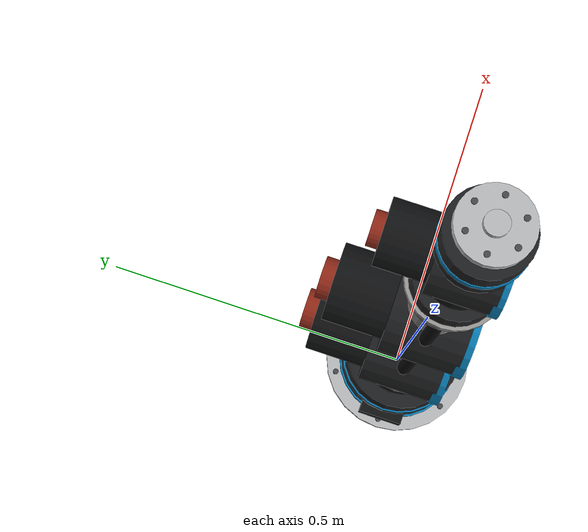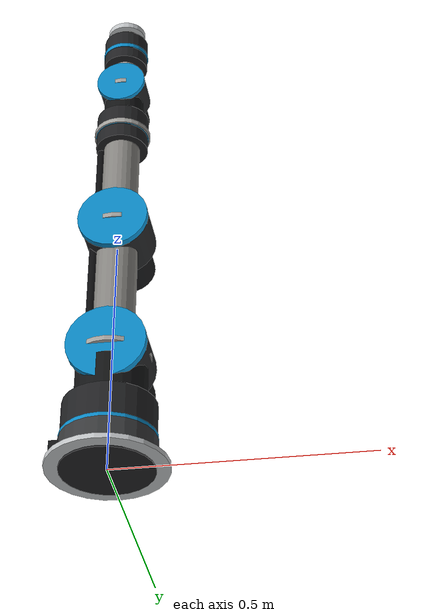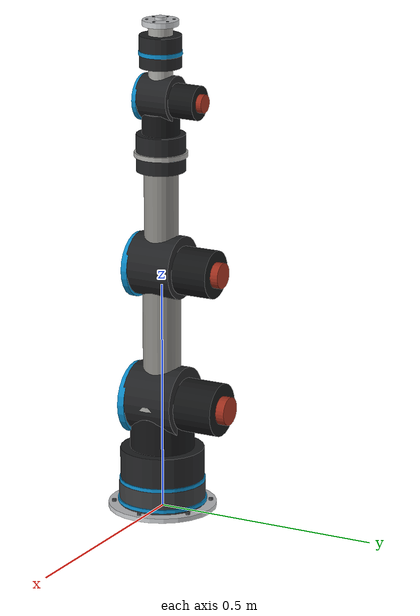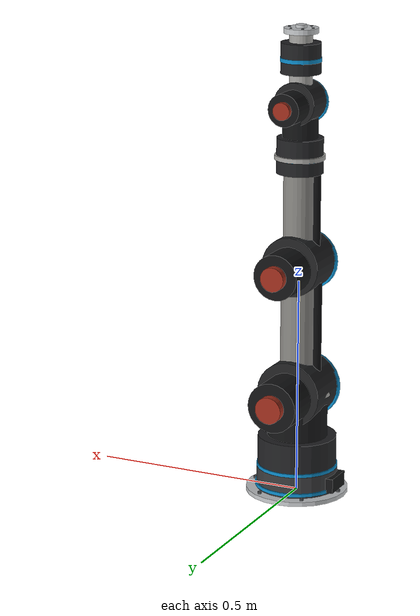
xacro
<?xml version="1.0"?>
<robot name="robot_arm" xmlns:xacro="http://www.ros.org/wiki/xacro">

  <!-- ============== ARGUMENTS ======================================== -->
  <xacro:arg name="use_ros2_control" default="true"/>
  <xacro:arg name="use_sensors"      default="true"/>

  <!-- ============== INCLUDES ========================================= -->
  <xacro:include filename="$(find robot_arm_description)/urdf/materials.xacro"/>
  <xacro:include filename="$(find robot_arm_description)/urdf/industrial_parts.xacro"/>
  <xacro:include filename="$(find robot_arm_description)/urdf/sensors.xacro"/>

  <xacro:property name="base_radius" value="0.10"/>
  <xacro:property name="base_length" value="0.06"/>
  <xacro:property name="base_mass"   value="2.0"/>

  <xacro:property name="l1_radius" value="0.060"/>
  <xacro:property name="l1_length" value="0.18"/>
  <xacro:property name="l1_mass"   value="1.2"/>

  <xacro:property name="l2_radius" value="0.050"/>
  <xacro:property name="l2_length" value="0.30"/>
  <xacro:property name="l2_mass"   value="1.0"/>

  <xacro:property name="l3_radius" value="0.045"/>
  <xacro:property name="l3_length" value="0.25"/>
  <xacro:property name="l3_mass"   value="0.8"/>

  <xacro:property name="l4_radius" value="0.035"/>
  <xacro:property name="l4_length" value="0.12"/>
  <xacro:property name="l4_mass"   value="0.4"/>

  <xacro:property name="l5_radius" value="0.032"/>
  <xacro:property name="l5_length" value="0.10"/>
  <xacro:property name="l5_mass"   value="0.3"/>

  <xacro:property name="l6_radius" value="0.030"/>
  <xacro:property name="l6_length" value="0.07"/>
  <xacro:property name="l6_mass"   value="0.2"/>

  <!-- Cylinder axis orientations for the joint housings -->
  <xacro:property name="axis_z" value="0 0 0"/>
  <xacro:property name="axis_y" value="1.5708 0 0"/>

  <xacro:macro name="cylinder_inertia" params="mass radius length">
    <inertial>
      <origin xyz="0 0 ${length/2}" rpy="0 0 0"/>
      <mass value="${mass}"/>
      <inertia
        ixx="${mass*(3*radius*radius + length*length)/12}" ixy="0.0" ixz="0.0"
        iyy="${mass*(3*radius*radius + length*length)/12}" iyz="0.0"
        izz="${mass*radius*radius/2}"/>
    </inertial>
  </xacro:macro>

  <xacro:macro name="industrial_link"
               params="name radius length mass
                       housing_rpy motor_xyz encoder_xyz bearing_xyz
                       shell_colour:='${c_shell}'
                       show_plate:=true show_cable:=true">
    <link name="${name}">

      <!-- ==== PHYSICS: unchanged from the original model ==== -->
      <collision>
        <origin xyz="0 0 ${length/2}" rpy="0 0 0"/>
        <geometry>
          <cylinder radius="${radius}" length="${length}"/>
        </geometry>
      </collision>

      <xacro:cylinder_inertia mass="${mass}" radius="${radius}" length="${length}"/>

      <!-- ==== VISUAL: composed industrial body ==== -->
      <xacro:structural_tube name="${name}" radius="${radius}"
                             length="${length}" colour="${shell_colour}"/>

      <xacro:joint_housing name="${name}" radius="${radius}"
                           z="${radius*0.10}" rpy="${housing_rpy}"
                           colour="${c_housing}"/>

      <xacro:bearing_ring name="${name}" radius="${radius}"
                          xyz="${bearing_xyz}" rpy="${housing_rpy}"
                          colour="${c_accent}"/>

      <xacro:motor_can name="${name}" radius="${radius}"
                       xyz="${motor_xyz}" rpy="${housing_rpy}"
                       colour="${c_motor}"/>

      <xacro:encoder_puck name="${name}" radius="${radius}"
                          xyz="${encoder_xyz}" rpy="${housing_rpy}"
                          colour="${c_encoder}"/>

      <xacro:if value="${show_cable}">
        <xacro:cable_run name="${name}" radius="${radius}"
                         length="${length}" colour="${c_cable}"/>
      </xacro:if>

      <xacro:if value="${show_plate}">
        <xacro:mounting_plate name="${name}" radius="${radius}"
                              z="${length}" colour="${c_shell_lt}"/>
      </xacro:if>

    </link>

    <xacro:metal_finish link="${name}"/>
  </xacro:macro>

  <link name="world"/>

  <link name="base_link">

    <!-- ==== PHYSICS: unchanged ==== -->
    <collision>
      <origin xyz="0 0 ${base_length/2}" rpy="0 0 0"/>
      <geometry>
        <cylinder radius="${base_radius}" length="${base_length}"/>
      </geometry>
    </collision>

    <xacro:cylinder_inertia mass="${base_mass}"
                            radius="${base_radius}"
                            length="${base_length}"/>

    <!-- ==== VISUAL: cast pedestal on a bolted floor plate ==== -->
    <visual name="base_floor_plate">
      <origin xyz="0 0 0.005" rpy="0 0 0"/>
      <geometry>
        <cylinder radius="${base_radius*1.18}" length="0.010"/>
      </geometry>
      <material name="base_floor_plate_mat"><color rgba="${c_steel}"/></material>
    </visual>

    <visual name="base_pedestal">
      <origin xyz="0 0 ${base_length*0.55}" rpy="0 0 0"/>
      <geometry>
        <cylinder radius="${base_radius*0.94}" length="${base_length*0.90}"/>
      </geometry>
      <material name="base_pedestal_mat"><color rgba="${c_base}"/></material>
    </visual>

    <visual name="base_collar">
      <origin xyz="0 0 ${base_length*0.97}" rpy="0 0 0"/>
      <geometry>
        <cylinder radius="${base_radius*0.72}" length="${base_length*0.28}"/>
      </geometry>
      <material name="base_collar_mat"><color rgba="${c_housing}"/></material>
    </visual>

    <visual name="base_accent_ring">
      <origin xyz="0 0 ${base_length*0.30}" rpy="0 0 0"/>
      <geometry>
        <cylinder radius="${base_radius*0.97}" length="0.008"/>
      </geometry>
      <material name="base_accent_ring_mat"><color rgba="${c_accent}"/></material>
    </visual>

    <!-- Controller connector block on the rear face -->
    <visual name="base_connector">
      <origin xyz="${-base_radius*0.80} 0 ${base_length*0.55}" rpy="0 0 0"/>
      <geometry>
        <box size="0.050 0.070 0.034"/>
      </geometry>
      <material name="base_connector_mat"><color rgba="${c_motor}"/></material>
    </visual>

    <xacro:bolt_ring name="base" circle_r="${base_radius*1.05}"
                     z="0.008" colour="${c_bolt}"/>

  </link>

  <xacro:metal_finish link="base_link" metalness="0.70" roughness="0.50"/>

  <joint name="world_to_base" type="fixed">
    <parent link="world"/>
    <child  link="base_link"/>
    <origin xyz="0 0 0" rpy="0 0 0"/>
  </joint>

  <!-- ============== JOINT 1 - BASE YAW ===============================
       Rotates the whole arm around the vertical axis.
       ================================================================== -->
  <xacro:industrial_link name="link_1" radius="${l1_radius}"
                         length="${l1_length}" mass="${l1_mass}"
                         housing_rpy="${axis_z}"
                         motor_xyz="0 0 ${l1_radius*1.55}"
                         encoder_xyz="0 0 ${l1_radius*2.75}"
                         bearing_xyz="0 0 ${-l1_radius*0.02}"
                         shell_colour="${c_shell}"/>

  <joint name="joint_1" type="revolute">
    <parent link="base_link"/>
    <child  link="link_1"/>
    <origin xyz="0 0 ${base_length}" rpy="0 0 0"/>
    <axis   xyz="0 0 1"/>
    <limit lower="-3.14159" upper="3.14159" effort="60.0" velocity="2.0"/>
  </joint>

  <!-- ============== JOINT 2 - SHOULDER PITCH ========================== -->
  <xacro:industrial_link name="link_2" radius="${l2_radius}"
                         length="${l2_length}" mass="${l2_mass}"
                         housing_rpy="${axis_y}"
                         motor_xyz="0 ${l2_radius*1.90} 0"
                         encoder_xyz="0 ${l2_radius*3.10} 0"
                         bearing_xyz="0 ${-l2_radius*1.20} 0"
                         shell_colour="${c_shell}"/>

  <joint name="joint_2" type="revolute">
    <parent link="link_1"/>
    <child  link="link_2"/>
    <origin xyz="0 0 ${l1_length}" rpy="0 0 0"/>
    <axis   xyz="0 1 0"/>
    <limit lower="-2.0944" upper="2.0944" effort="60.0" velocity="2.0"/>
  </joint>

  <!-- ============== JOINT 3 - ELBOW PITCH ============================= -->
  <xacro:industrial_link name="link_3" radius="${l3_radius}"
                         length="${l3_length}" mass="${l3_mass}"
                         housing_rpy="${axis_y}"
                         motor_xyz="0 ${l3_radius*1.90} 0"
                         encoder_xyz="0 ${l3_radius*3.10} 0"
                         bearing_xyz="0 ${-l3_radius*1.20} 0"
                         shell_colour="${c_shell}"/>

  <joint name="joint_3" type="revolute">
    <parent link="link_2"/>
    <child  link="link_3"/>
    <origin xyz="0 0 ${l2_length}" rpy="0 0 0"/>
    <axis   xyz="0 1 0"/>
    <limit lower="-2.6180" upper="2.6180" effort="40.0" velocity="2.5"/>
  </joint>

  <!-- ============== JOINT 4 - WRIST ROLL ============================== -->
  <xacro:industrial_link name="link_4" radius="${l4_radius}"
                         length="${l4_length}" mass="${l4_mass}"
                         housing_rpy="${axis_z}"
                         motor_xyz="0 0 ${l4_radius*1.55}"
                         encoder_xyz="0 0 ${l4_radius*2.75}"
                         bearing_xyz="0 0 ${-l4_radius*0.02}"
                         shell_colour="${c_shell_lt}"
                         show_cable="false"/>

  <joint name="joint_4" type="revolute">
    <parent link="link_3"/>
    <child  link="link_4"/>
    <origin xyz="0 0 ${l3_length}" rpy="0 0 0"/>
    <axis   xyz="0 0 1"/>
    <limit lower="-3.14159" upper="3.14159" effort="20.0" velocity="3.0"/>
  </joint>

  <!-- ============== JOINT 5 - WRIST PITCH ============================= -->
  <xacro:industrial_link name="link_5" radius="${l5_radius}"
                         length="${l5_length}" mass="${l5_mass}"
                         housing_rpy="${axis_y}"
                         motor_xyz="0 ${l5_radius*1.90} 0"
                         encoder_xyz="0 ${l5_radius*3.10} 0"
                         bearing_xyz="0 ${-l5_radius*1.20} 0"
                         shell_colour="${c_shell_lt}"
                         show_cable="false"/>

  <joint name="joint_5" type="revolute">
    <parent link="link_4"/>
    <child  link="link_5"/>
    <origin xyz="0 0 ${l4_length}" rpy="0 0 0"/>
    <axis   xyz="0 1 0"/>
    <limit lower="-2.0944" upper="2.0944" effort="15.0" velocity="3.0"/>
  </joint>

  <link name="link_6">

    <!-- ==== PHYSICS: unchanged ==== -->
    <collision>
      <origin xyz="0 0 ${l6_length/2}" rpy="0 0 0"/>
      <geometry>
        <cylinder radius="${l6_radius}" length="${l6_length}"/>
      </geometry>
    </collision>

    <xacro:cylinder_inertia mass="${l6_mass}"
                            radius="${l6_radius}"
                            length="${l6_length}"/>

    <!-- ==== VISUAL: wrist housing + machined tool flange ==== -->
    <xacro:joint_housing name="link_6" radius="${l6_radius}"
                         z="${l6_radius*0.10}" rpy="${axis_z}"
                         colour="${c_housing}"/>

    <xacro:bearing_ring name="link_6" radius="${l6_radius}"
                        xyz="0 0 ${-l6_radius*0.02}" rpy="${axis_z}"
                        colour="${c_accent}"/>

    <visual name="link_6_barrel">
      <origin xyz="0 0 ${l6_length*0.58}" rpy="0 0 0"/>
      <geometry>
        <cylinder radius="${l6_radius*0.88}" length="${l6_length*0.52}"/>
      </geometry>
      <material name="link_6_barrel_mat"><color rgba="${c_shell_lt}"/></material>
    </visual>

    <!-- ISO 9409-1 style flat tool flange -->
    <visual name="tool_flange">
      <origin xyz="0 0 ${l6_length - 0.006}" rpy="0 0 0"/>
      <geometry>
        <cylinder radius="${l6_radius*1.30}" length="0.012"/>
      </geometry>
      <material name="tool_flange_mat"><color rgba="${c_steel}"/></material>
    </visual>

    <!-- Central pilot boss -->
    <visual name="tool_boss">
      <origin xyz="0 0 ${l6_length + 0.003}" rpy="0 0 0"/>
      <geometry>
        <cylinder radius="${l6_radius*0.42}" length="0.008"/>
      </geometry>
      <material name="tool_boss_mat"><color rgba="${c_steel}"/></material>
    </visual>

    <xacro:bolt_ring name="tool" circle_r="${l6_radius*0.95}"
                     z="${l6_length - 0.004}" colour="${c_bolt}"
                     bolt_r="0.0032" bolt_h="0.010"/>

  </link>

  <xacro:metal_finish link="link_6" metalness="0.90" roughness="0.30"/>

  <joint name="joint_6" type="revolute">
    <parent link="link_5"/>
    <child  link="link_6"/>
    <origin xyz="0 0 ${l5_length}" rpy="0 0 0"/>
    <axis   xyz="0 0 1"/>
    <limit lower="-3.14159" upper="3.14159" effort="10.0" velocity="3.0"/>
  </joint>

  <link name="end_effector"/>

  <joint name="link_6_to_end_effector" type="fixed">
    <parent link="link_6"/>
    <child  link="end_effector"/>
    <origin xyz="0 0 ${l6_length}" rpy="0 0 0"/>
  </joint>

  <xacro:if value="$(arg use_sensors)">
    <xacro:arm_sensors imu_link="link_6" ft_joint="joint_6"/>
  </xacro:if>

  <xacro:include filename="$(find robot_arm_description)/urdf/ros2_control.xacro"/>

  <xacro:if value="$(arg use_ros2_control)">
    <xacro:arm_ros2_control
      controllers_file="$(find robot_arm_control)/config/controllers.yaml"/>
  </xacro:if>

</robot>

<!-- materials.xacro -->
<robot xmlns:xacro="http://www.ros.org/wiki/xacro">

  <xacro:property name="c_shell"    value="0.529 0.522 0.506 1.0"/>
  <xacro:property name="c_shell_lt" value="0.640 0.636 0.622 1.0"/>
  <xacro:property name="c_housing"  value="0.130 0.133 0.140 1.0"/>
  <xacro:property name="c_motor"    value="0.075 0.078 0.082 1.0"/>
  <xacro:property name="c_accent"   value="0.043 0.541 0.780 1.0"/>
  <xacro:property name="c_steel"    value="0.760 0.770 0.780 1.0"/>
  <xacro:property name="c_bolt"     value="0.290 0.300 0.310 1.0"/>
  <xacro:property name="c_cable"    value="0.045 0.045 0.050 1.0"/>
  <xacro:property name="c_base"     value="0.220 0.225 0.232 1.0"/>
  <xacro:property name="c_encoder"  value="0.620 0.180 0.110 1.0"/>

  <!-- Fortress-side surface finish. Applied per link. These blocks set
       specular/PBR only; the per-visual URDF colours above still drive
       the two-tone appearance. -->
  <xacro:macro name="metal_finish" params="link metalness:=0.85 roughness:=0.38">
    <gazebo reference="${link}">
      <visual>
        <material>
          <specular>0.90 0.90 0.92 1.0</specular>
          <emissive>0 0 0 1</emissive>
          <pbr>
            <metal>
              <metalness>${metalness}</metalness>
              <roughness>${roughness}</roughness>
            </metal>
          </pbr>
        </material>
      </visual>
    </gazebo>
  </xacro:macro>

</robot>

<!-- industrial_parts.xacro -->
<robot xmlns:xacro="http://www.ros.org/wiki/xacro">

  <xacro:macro name="structural_tube" params="name radius length colour">
    <visual name="${name}_tube">
      <origin xyz="0 0 ${length/2}" rpy="0 0 0"/>
      <geometry>
        <cylinder radius="${radius*0.82}" length="${length*0.96}"/>
      </geometry>
      <material name="${name}_tube_mat"><color rgba="${colour}"/></material>
    </visual>
  </xacro:macro>

  <xacro:macro name="joint_housing" params="name radius z rpy colour">
    <visual name="${name}_housing">
      <origin xyz="0 0 ${z}" rpy="${rpy}"/>
      <geometry>
        <cylinder radius="${radius*1.52}" length="${radius*2.30}"/>
      </geometry>
      <material name="${name}_housing_mat"><color rgba="${colour}"/></material>
    </visual>
  </xacro:macro>

  <xacro:macro name="bearing_ring" params="name radius xyz rpy colour">
    <visual name="${name}_bearing">
      <origin xyz="${xyz}" rpy="${rpy}"/>
      <geometry>
        <cylinder radius="${radius*1.56}" length="${radius*0.30}"/>
      </geometry>
      <material name="${name}_bearing_mat"><color rgba="${colour}"/></material>
    </visual>
  </xacro:macro>

  <xacro:macro name="motor_can" params="name radius xyz rpy colour">
    <visual name="${name}_motor">
      <origin xyz="${xyz}" rpy="${rpy}"/>
      <geometry>
        <cylinder radius="${radius*1.16}" length="${radius*2.05}"/>
      </geometry>
      <material name="${name}_motor_mat"><color rgba="${colour}"/></material>
    </visual>
  </xacro:macro>

  <xacro:macro name="encoder_puck" params="name radius xyz rpy colour">
    <visual name="${name}_encoder">
      <origin xyz="${xyz}" rpy="${rpy}"/>
      <geometry>
        <cylinder radius="${radius*0.62}" length="${radius*0.42}"/>
      </geometry>
      <material name="${name}_encoder_mat"><color rgba="${colour}"/></material>
    </visual>
  </xacro:macro>

  <!-- ===============================================================
       Mounting plate at the distal end of a link.
       =============================================================== -->
  <xacro:macro name="mounting_plate" params="name radius z colour thickness:=0.010">
    <visual name="${name}_plate">
      <origin xyz="0 0 ${z}" rpy="0 0 0"/>
      <geometry>
        <cylinder radius="${radius*1.28}" length="${thickness}"/>
      </geometry>
      <material name="${name}_plate_mat"><color rgba="${colour}"/></material>
    </visual>
  </xacro:macro>

  <!-- ===============================================================
       External cable conduit running along a link.
       =============================================================== -->
  <xacro:macro name="cable_run" params="name radius length colour">
    <visual name="${name}_cable">
      <origin xyz="${-radius*0.94} 0 ${length*0.52}" rpy="0 0 0"/>
      <geometry>
        <cylinder radius="${radius*0.20}" length="${length*0.72}"/>
      </geometry>
      <material name="${name}_cable_mat"><color rgba="${colour}"/></material>
    </visual>
  </xacro:macro>

  <xacro:macro name="bolt_ring" params="name circle_r z colour bolt_r:=0.0045 bolt_h:=0.014">
    <visual name="${name}_bolt_0">
      <origin xyz="${circle_r} 0 ${z}" rpy="0 0 0"/>
      <geometry><cylinder radius="${bolt_r}" length="${bolt_h}"/></geometry>
      <material name="${name}_bolt_0_mat"><color rgba="${colour}"/></material>
    </visual>
    <visual name="${name}_bolt_1">
      <origin xyz="${circle_r*0.5} ${circle_r*0.866} ${z}" rpy="0 0 0"/>
      <geometry><cylinder radius="${bolt_r}" length="${bolt_h}"/></geometry>
      <material name="${name}_bolt_1_mat"><color rgba="${colour}"/></material>
    </visual>
    <visual name="${name}_bolt_2">
      <origin xyz="${-circle_r*0.5} ${circle_r*0.866} ${z}" rpy="0 0 0"/>
      <geometry><cylinder radius="${bolt_r}" length="${bolt_h}"/></geometry>
      <material name="${name}_bolt_2_mat"><color rgba="${colour}"/></material>
    </visual>
    <visual name="${name}_bolt_3">
      <origin xyz="${-circle_r} 0 ${z}" rpy="0 0 0"/>
      <geometry><cylinder radius="${bolt_r}" length="${bolt_h}"/></geometry>
      <material name="${name}_bolt_3_mat"><color rgba="${colour}"/></material>
    </visual>
    <visual name="${name}_bolt_4">
      <origin xyz="${-circle_r*0.5} ${-circle_r*0.866} ${z}" rpy="0 0 0"/>
      <geometry><cylinder radius="${bolt_r}" length="${bolt_h}"/></geometry>
      <material name="${name}_bolt_4_mat"><color rgba="${colour}"/></material>
    </visual>
    <visual name="${name}_bolt_5">
      <origin xyz="${circle_r*0.5} ${-circle_r*0.866} ${z}" rpy="0 0 0"/>
      <geometry><cylinder radius="${bolt_r}" length="${bolt_h}"/></geometry>
      <material name="${name}_bolt_5_mat"><color rgba="${colour}"/></material>
    </visual>
  </xacro:macro>

</robot>
